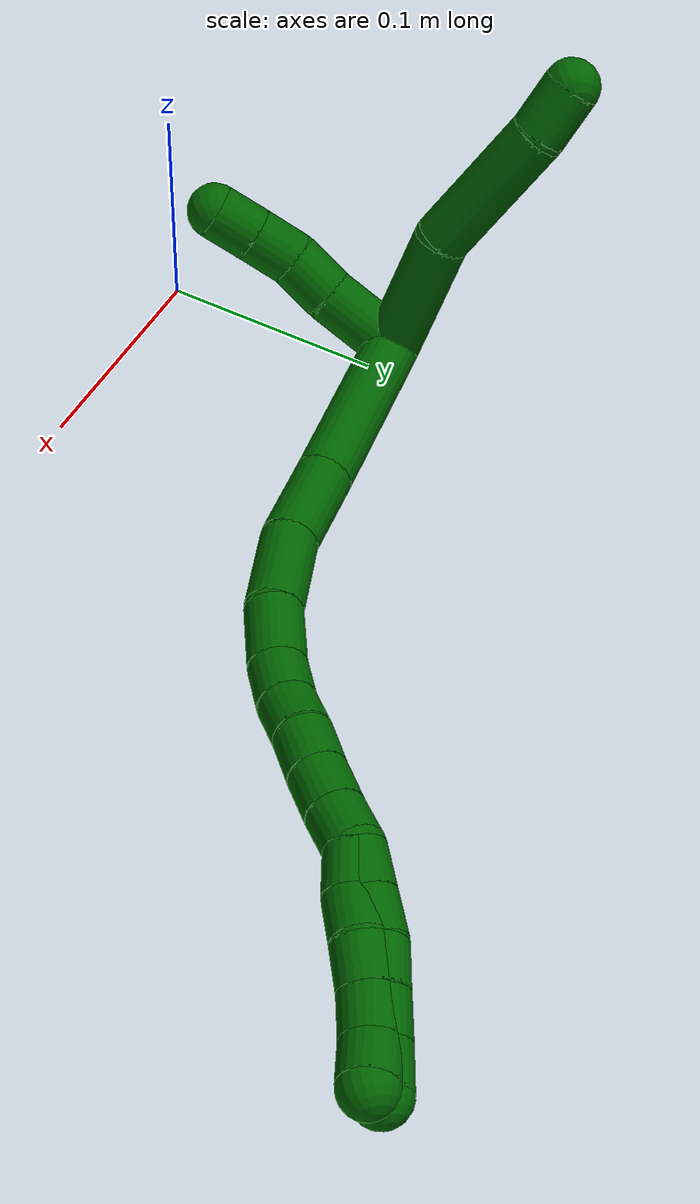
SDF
<sdf version="1.7">
 <world name="default">
  <model name="6">
   <static>0</static>
   <link name="6">
    <collision name="collision-cylinder-e_1_2_8">
     <pose>0.027853 -0.00902 -0.006403 2.18809 1.19276 1.84078</pose>
     <geometry><cylinder><radius>0.0125</radius><length>0.059938</length></cylinder></geometry>
     <surface>
      <friction><ode><mu>1.16</mu><mu2>1.16</mu2><slip1>0</slip1><slip2>0</slip2></ode></friction>
      <contact><ode><kp>1e+06</kp><kd>1</kd><max_vel>0</max_vel><min_depth>0.001</min_depth></ode></contact>
     </surface>
    </collision>
    <visual name="visual-cylinder-e_1_2_8">
     <pose>0.027853 -0.00902 -0.006403 2.18809 1.19276 1.84078</pose>
     <geometry><cylinder><radius>0.0125</radius><length>0.059938</length></cylinder></geometry>
     <material><ambient>0 0.392157 0.003922 1</ambient></material>
    </visual>
    <collision name="collision-cylinder-e_2_8_9">
     <pose>0.082305 -0.036336 -0.01705 1.79874 0.955988 1.15556</pose>
     <geometry><cylinder><radius>0.0125</radius><length>0.065125</length></cylinder></geometry>
     <surface>
      <friction><ode><mu>1.16</mu><mu2>1.16</mu2><slip1>0</slip1><slip2>0</slip2></ode></friction>
      <contact><ode><kp>1e+06</kp><kd>1</kd><max_vel>0</max_vel><min_depth>0.001</min_depth></ode></contact>
     </surface>
    </collision>
    <visual name="visual-cylinder-e_2_8_9">
     <pose>0.082305 -0.036336 -0.01705 1.79874 0.955988 1.15556</pose>
     <geometry><cylinder><radius>0.0125</radius><length>0.065125</length></cylinder></geometry>
     <material><ambient>0 0.392157 0.003922 1</ambient></material>
    </visual>
    <collision name="collision-cylinder-e_3_9_6">
     <pose>0.118403 -0.061544 -0.025476 2.11487 0.866005 1.37355</pose>
     <geometry><cylinder><radius>0.0125</radius><length>0.024937</length></cylinder></geometry>
     <surface>
      <friction><ode><mu>1.16</mu><mu2>1.16</mu2><slip1>0</slip1><slip2>0</slip2></ode></friction>
      <contact><ode><kp>1e+06</kp><kd>1</kd><max_vel>0</max_vel><min_depth>0.001</min_depth></ode></contact>
     </surface>
    </collision>
    <visual name="visual-cylinder-e_3_9_6">
     <pose>0.118403 -0.061544 -0.025476 2.11487 0.866005 1.37355</pose>
     <geometry><cylinder><radius>0.0125</radius><length>0.024937</length></cylinder></geometry>
     <material><ambient>0 0.392157 0.003922 1</ambient></material>
    </visual>
    <collision name="collision-cylinder-e_1_2_10">
     <pose>0.006172 0.012983 -0.011157 -2.28072 0.346026 -0.727375</pose>
     <geometry><cylinder><radius>0.0125</radius><length>0.036393</length></cylinder></geometry>
     <surface>
      <friction><ode><mu>1.16</mu><mu2>1.16</mu2><slip1>0</slip1><slip2>0</slip2></ode></friction>
      <contact><ode><kp>1e+06</kp><kd>1</kd><max_vel>0</max_vel><min_depth>0.001</min_depth></ode></contact>
     </surface>
    </collision>
    <visual name="visual-cylinder-e_1_2_10">
     <pose>0.006172 0.012983 -0.011157 -2.28072 0.346026 -0.727375</pose>
     <geometry><cylinder><radius>0.0125</radius><length>0.036393</length></cylinder></geometry>
     <material><ambient>0 0.392157 0.003922 1</ambient></material>
    </visual>
    <collision name="collision-cylinder-e_2_10_11">
     <pose>0.016943 0.033037 -0.029637 -2.37359 0.424361 -0.979623</pose>
     <geometry><cylinder><radius>0.0125</radius><length>0.022341</length></cylinder></geometry>
     <surface>
      <friction><ode><mu>1.16</mu><mu2>1.16</mu2><slip1>0</slip1><slip2>0</slip2></ode></friction>
      <contact><ode><kp>1e+06</kp><kd>1</kd><max_vel>0</max_vel><min_depth>0.001</min_depth></ode></contact>
     </surface>
    </collision>
    <visual name="visual-cylinder-e_2_10_11">
     <pose>0.016943 0.033037 -0.029637 -2.37359 0.424361 -0.979623</pose>
     <geometry><cylinder><radius>0.0125</radius><length>0.022341</length></cylinder></geometry>
     <material><ambient>0 0.392157 0.003922 1</ambient></material>
    </visual>
    <collision name="collision-cylinder-e_3_11_12">
     <pose>0.025695 0.048592 -0.041691 -2.07963 0.403982 -0.671075</pose>
     <geometry><cylinder><radius>0.0125</radius><length>0.021129</length></cylinder></geometry>
     <surface>
      <friction><ode><mu>1.16</mu><mu2>1.16</mu2><slip1>0</slip1><slip2>0</slip2></ode></friction>
      <contact><ode><kp>1e+06</kp><kd>1</kd><max_vel>0</max_vel><min_depth>0.001</min_depth></ode></contact>
     </surface>
    </collision>
    <visual name="visual-cylinder-e_3_11_12">
     <pose>0.025695 0.048592 -0.041691 -2.07963 0.403982 -0.671075</pose>
     <geometry><cylinder><radius>0.0125</radius><length>0.021129</length></cylinder></geometry>
     <material><ambient>0 0.392157 0.003922 1</ambient></material>
    </visual>
    <collision name="collision-cylinder-e_4_12_5">
     <pose>0.033661 0.065219 -0.050952 -2.07827 0.388508 -0.645599</pose>
     <geometry><cylinder><radius>0.0125</radius><length>0.020136</length></cylinder></geometry>
     <surface>
      <friction><ode><mu>1.16</mu><mu2>1.16</mu2><slip1>0</slip1><slip2>0</slip2></ode></friction>
      <contact><ode><kp>1e+06</kp><kd>1</kd><max_vel>0</max_vel><min_depth>0.001</min_depth></ode></contact>
     </surface>
    </collision>
    <visual name="visual-cylinder-e_4_12_5">
     <pose>0.033661 0.065219 -0.050952 -2.07827 0.388508 -0.645599</pose>
     <geometry><cylinder><radius>0.0125</radius><length>0.020136</length></cylinder></geometry>
     <material><ambient>0 0.392157 0.003922 1</ambient></material>
    </visual>
    <collision name="collision-cylinder-e_1_2_13">
     <pose>0.003749 0.023627 0.035882 -0.582293 0.087034 -0.026096</pose>
     <geometry><cylinder><radius>0.0125</radius><length>0.086251</length></cylinder></geometry>
     <surface>
      <friction><ode><mu>1.16</mu><mu2>1.16</mu2><slip1>0</slip1><slip2>0</slip2></ode></friction>
      <contact><ode><kp>1e+06</kp><kd>1</kd><max_vel>0</max_vel><min_depth>0.001</min_depth></ode></contact>
     </surface>
    </collision>
    <visual name="visual-cylinder-e_1_2_13">
     <pose>0.003749 0.023627 0.035882 -0.582293 0.087034 -0.026096</pose>
     <geometry><cylinder><radius>0.0125</radius><length>0.086251</length></cylinder></geometry>
     <material><ambient>0 0.392157 0.003922 1</ambient></material>
    </visual>
    <collision name="collision-cylinder-e_2_13_14">
     <pose>0.009749 0.058428 0.08843 -0.590646 0.111775 -0.034036</pose>
     <geometry><cylinder><radius>0.0125</radius><length>0.040382</length></cylinder></geometry>
     <surface>
      <friction><ode><mu>1.16</mu><mu2>1.16</mu2><slip1>0</slip1><slip2>0</slip2></ode></friction>
      <contact><ode><kp>1e+06</kp><kd>1</kd><max_vel>0</max_vel><min_depth>0.001</min_depth></ode></contact>
     </surface>
    </collision>
    <visual name="visual-cylinder-e_2_13_14">
     <pose>0.009749 0.058428 0.08843 -0.590646 0.111775 -0.034036</pose>
     <geometry><cylinder><radius>0.0125</radius><length>0.040382</length></cylinder></geometry>
     <material><ambient>0 0.392157 0.003922 1</ambient></material>
    </visual>
    <collision name="collision-cylinder-e_3_14_15">
     <pose>0.015786 0.076985 0.123934 -0.373518 0.184911 -0.035037</pose>
     <geometry><cylinder><radius>0.0125</radius><length>0.041168</length></cylinder></geometry>
     <surface>
      <friction><ode><mu>1.16</mu><mu2>1.16</mu2><slip1>0</slip1><slip2>0</slip2></ode></friction>
      <contact><ode><kp>1e+06</kp><kd>1</kd><max_vel>0</max_vel><min_depth>0.001</min_depth></ode></contact>
     </surface>
    </collision>
    <visual name="visual-cylinder-e_3_14_15">
     <pose>0.015786 0.076985 0.123934 -0.373518 0.184911 -0.035037</pose>
     <geometry><cylinder><radius>0.0125</radius><length>0.041168</length></cylinder></geometry>
     <material><ambient>0 0.392157 0.003922 1</ambient></material>
    </visual>
    <collision name="collision-cylinder-e_4_15_16">
     <pose>0.020949 0.086532 0.15704 -0.15053 0.095245 -0.007188</pose>
     <geometry><cylinder><radius>0.0125</radius><length>0.028994</length></cylinder></geometry>
     <surface>
      <friction><ode><mu>1.16</mu><mu2>1.16</mu2><slip1>0</slip1><slip2>0</slip2></ode></friction>
      <contact><ode><kp>1e+06</kp><kd>1</kd><max_vel>0</max_vel><min_depth>0.001</min_depth></ode></contact>
     </surface>
    </collision>
    <visual name="visual-cylinder-e_4_15_16">
     <pose>0.020949 0.086532 0.15704 -0.15053 0.095245 -0.007188</pose>
     <geometry><cylinder><radius>0.0125</radius><length>0.028994</length></cylinder></geometry>
     <material><ambient>0 0.392157 0.003922 1</ambient></material>
    </visual>
    <collision name="collision-cylinder-e_5_16_17">
     <pose>0.024623 0.088979 0.181403 -0.02807 0.223472 -0.00315</pose>
     <geometry><cylinder><radius>0.0125</radius><length>0.020714</length></cylinder></geometry>
     <surface>
      <friction><ode><mu>1.16</mu><mu2>1.16</mu2><slip1>0</slip1><slip2>0</slip2></ode></friction>
      <contact><ode><kp>1e+06</kp><kd>1</kd><max_vel>0</max_vel><min_depth>0.001</min_depth></ode></contact>
     </surface>
    </collision>
    <visual name="visual-cylinder-e_5_16_17">
     <pose>0.024623 0.088979 0.181403 -0.02807 0.223472 -0.00315</pose>
     <geometry><cylinder><radius>0.0125</radius><length>0.020714</length></cylinder></geometry>
     <material><ambient>0 0.392157 0.003922 1</ambient></material>
    </visual>
    <collision name="collision-cylinder-e_6_17_18">
     <pose>0.030315 0.088339 0.200895 0.098006 0.345365 0.017107</pose>
     <geometry><cylinder><radius>0.0125</radius><length>0.020067</length></cylinder></geometry>
     <surface>
      <friction><ode><mu>1.16</mu><mu2>1.16</mu2><slip1>0</slip1><slip2>0</slip2></ode></friction>
      <contact><ode><kp>1e+06</kp><kd>1</kd><max_vel>0</max_vel><min_depth>0.001</min_depth></ode></contact>
     </surface>
    </collision>
    <visual name="visual-cylinder-e_6_17_18">
     <pose>0.030315 0.088339 0.200895 0.098006 0.345365 0.017107</pose>
     <geometry><cylinder><radius>0.0125</radius><length>0.020067</length></cylinder></geometry>
     <material><ambient>0 0.392157 0.003922 1</ambient></material>
    </visual>
    <collision name="collision-cylinder-e_7_18_19">
     <pose>0.036246 0.086795 0.220657 0.059778 0.23931 0.007189</pose>
     <geometry><cylinder><radius>0.0125</radius><length>0.021378</length></cylinder></geometry>
     <surface>
      <friction><ode><mu>1.16</mu><mu2>1.16</mu2><slip1>0</slip1><slip2>0</slip2></ode></friction>
      <contact><ode><kp>1e+06</kp><kd>1</kd><max_vel>0</max_vel><min_depth>0.001</min_depth></ode></contact>
     </surface>
    </collision>
    <visual name="visual-cylinder-e_7_18_19">
     <pose>0.036246 0.086795 0.220657 0.059778 0.23931 0.007189</pose>
     <geometry><cylinder><radius>0.0125</radius><length>0.021378</length></cylinder></geometry>
     <material><ambient>0 0.392157 0.003922 1</ambient></material>
    </visual>
    <collision name="collision-cylinder-e_8_19_20">
     <pose>0.041215 0.085034 0.241075 0.112921 0.236237 0.013414</pose>
     <geometry><cylinder><radius>0.0125</radius><length>0.020813</length></cylinder></geometry>
     <surface>
      <friction><ode><mu>1.16</mu><mu2>1.16</mu2><slip1>0</slip1><slip2>0</slip2></ode></friction>
      <contact><ode><kp>1e+06</kp><kd>1</kd><max_vel>0</max_vel><min_depth>0.001</min_depth></ode></contact>
     </surface>
    </collision>
    <visual name="visual-cylinder-e_8_19_20">
     <pose>0.041215 0.085034 0.241075 0.112921 0.236237 0.013414</pose>
     <geometry><cylinder><radius>0.0125</radius><length>0.020813</length></cylinder></geometry>
     <material><ambient>0 0.392157 0.003922 1</ambient></material>
    </visual>
    <collision name="collision-cylinder-e_9_20_1">
     <pose>0.046455 0.082395 0.260732 0.154877 0.280873 0.021937</pose>
     <geometry><cylinder><radius>0.0125</radius><length>0.020233</length></cylinder></geometry>
     <surface>
      <friction><ode><mu>1.16</mu><mu2>1.16</mu2><slip1>0</slip1><slip2>0</slip2></ode></friction>
      <contact><ode><kp>1e+06</kp><kd>1</kd><max_vel>0</max_vel><min_depth>0.001</min_depth></ode></contact>
     </surface>
    </collision>
    <visual name="visual-cylinder-e_9_20_1">
     <pose>0.046455 0.082395 0.260732 0.154877 0.280873 0.021937</pose>
     <geometry><cylinder><radius>0.0125</radius><length>0.020233</length></cylinder></geometry>
     <material><ambient>0 0.392157 0.003922 1</ambient></material>
    </visual>
    <collision name="collision-cylinder-e_1_1_21">
     <pose>0.049005 0.080905 0.280332 -0.000937 -0.025415 1.2e-05</pose>
     <geometry><cylinder><radius>0.0125</radius><length>0.02</length></cylinder></geometry>
     <surface>
      <friction><ode><mu>1.16</mu><mu2>1.16</mu2><slip1>0</slip1><slip2>0</slip2></ode></friction>
      <contact><ode><kp>1e+06</kp><kd>1</kd><max_vel>0</max_vel><min_depth>0.001</min_depth></ode></contact>
     </surface>
    </collision>
    <visual name="visual-cylinder-e_1_1_21">
     <pose>0.049005 0.080905 0.280332 -0.000937 -0.025415 1.2e-05</pose>
     <geometry><cylinder><radius>0.0125</radius><length>0.02</length></cylinder></geometry>
     <material><ambient>0 0.392157 0.003922 1</ambient></material>
    </visual>
    <collision name="collision-cylinder-e_2_21_22">
     <pose>0.048813 0.080932 0.300329 -0.001749 0.00619 -5e-06</pose>
     <geometry><cylinder><radius>0.0125</radius><length>0.02</length></cylinder></geometry>
     <surface>
      <friction><ode><mu>1.16</mu><mu2>1.16</mu2><slip1>0</slip1><slip2>0</slip2></ode></friction>
      <contact><ode><kp>1e+06</kp><kd>1</kd><max_vel>0</max_vel><min_depth>0.001</min_depth></ode></contact>
     </surface>
    </collision>
    <visual name="visual-cylinder-e_2_21_22">
     <pose>0.048813 0.080932 0.300329 -0.001749 0.00619 -5e-06</pose>
     <geometry><cylinder><radius>0.0125</radius><length>0.02</length></cylinder></geometry>
     <material><ambient>0 0.392157 0.003922 1</ambient></material>
    </visual>
    <collision name="collision-cylinder-e_3_22_23">
     <pose>0.049091 0.082905 0.320133 -0.196851 0.021636 -0.002137</pose>
     <geometry><cylinder><radius>0.0125</radius><length>0.02</length></cylinder></geometry>
     <surface>
      <friction><ode><mu>1.16</mu><mu2>1.16</mu2><slip1>0</slip1><slip2>0</slip2></ode></friction>
      <contact><ode><kp>1e+06</kp><kd>1</kd><max_vel>0</max_vel><min_depth>0.001</min_depth></ode></contact>
     </surface>
    </collision>
    <visual name="visual-cylinder-e_3_22_23">
     <pose>0.049091 0.082905 0.320133 -0.196851 0.021636 -0.002137</pose>
     <geometry><cylinder><radius>0.0125</radius><length>0.02</length></cylinder></geometry>
     <material><ambient>0 0.392157 0.003922 1</ambient></material>
    </visual>
    <collision name="collision-cylinder-e_4_23_24">
     <pose>0.048701 0.086579 0.33977 -0.173106 -0.060696 0.005268</pose>
     <geometry><cylinder><radius>0.0125</radius><length>0.02</length></cylinder></geometry>
     <surface>
      <friction><ode><mu>1.16</mu><mu2>1.16</mu2><slip1>0</slip1><slip2>0</slip2></ode></friction>
      <contact><ode><kp>1e+06</kp><kd>1</kd><max_vel>0</max_vel><min_depth>0.001</min_depth></ode></contact>
     </surface>
    </collision>
    <visual name="visual-cylinder-e_4_23_24">
     <pose>0.048701 0.086579 0.33977 -0.173106 -0.060696 0.005268</pose>
     <geometry><cylinder><radius>0.0125</radius><length>0.02</length></cylinder></geometry>
     <material><ambient>0 0.392157 0.003922 1</ambient></material>
    </visual>
    <collision name="collision-cylinder-e_5_24_4">
     <pose>0.0483 0.090269 0.359404 -0.198389 0.020543 -0.002045</pose>
     <geometry><cylinder><radius>0.0125</radius><length>0.02</length></cylinder></geometry>
     <surface>
      <friction><ode><mu>1.16</mu><mu2>1.16</mu2><slip1>0</slip1><slip2>0</slip2></ode></friction>
      <contact><ode><kp>1e+06</kp><kd>1</kd><max_vel>0</max_vel><min_depth>0.001</min_depth></ode></contact>
     </surface>
    </collision>
    <visual name="visual-cylinder-e_5_24_4">
     <pose>0.0483 0.090269 0.359404 -0.198389 0.020543 -0.002045</pose>
     <geometry><cylinder><radius>0.0125</radius><length>0.02</length></cylinder></geometry>
     <material><ambient>0 0.392157 0.003922 1</ambient></material>
    </visual>
    <collision name="collision-cylinder-e_1_1_25">
     <pose>0.048752 0.08318 0.280058 -0.230779 -0.050723 0.00588</pose>
     <geometry><cylinder><radius>0.0125</radius><length>0.02</length></cylinder></geometry>
     <surface>
      <friction><ode><mu>1.16</mu><mu2>1.16</mu2><slip1>0</slip1><slip2>0</slip2></ode></friction>
      <contact><ode><kp>1e+06</kp><kd>1</kd><max_vel>0</max_vel><min_depth>0.001</min_depth></ode></contact>
     </surface>
    </collision>
    <visual name="visual-cylinder-e_1_1_25">
     <pose>0.048752 0.08318 0.280058 -0.230779 -0.050723 0.00588</pose>
     <geometry><cylinder><radius>0.0125</radius><length>0.02</length></cylinder></geometry>
     <material><ambient>0 0.392157 0.003922 1</ambient></material>
    </visual>
    <collision name="collision-cylinder-e_2_25_26">
     <pose>0.049697 0.086269 0.299642 -0.081382 0.145705 -0.005943</pose>
     <geometry><cylinder><radius>0.0125</radius><length>0.02</length></cylinder></geometry>
     <surface>
      <friction><ode><mu>1.16</mu><mu2>1.16</mu2><slip1>0</slip1><slip2>0</slip2></ode></friction>
      <contact><ode><kp>1e+06</kp><kd>1</kd><max_vel>0</max_vel><min_depth>0.001</min_depth></ode></contact>
     </surface>
    </collision>
    <visual name="visual-cylinder-e_2_25_26">
     <pose>0.049697 0.086269 0.299642 -0.081382 0.145705 -0.005943</pose>
     <geometry><cylinder><radius>0.0125</radius><length>0.02</length></cylinder></geometry>
     <material><ambient>0 0.392157 0.003922 1</ambient></material>
    </visual>
    <collision name="collision-cylinder-e_3_26_27">
     <pose>0.0509 0.087775 0.319475 -0.070243 -0.024869 0.000874</pose>
     <geometry><cylinder><radius>0.0125</radius><length>0.02</length></cylinder></geometry>
     <surface>
      <friction><ode><mu>1.16</mu><mu2>1.16</mu2><slip1>0</slip1><slip2>0</slip2></ode></friction>
      <contact><ode><kp>1e+06</kp><kd>1</kd><max_vel>0</max_vel><min_depth>0.001</min_depth></ode></contact>
     </surface>
    </collision>
    <visual name="visual-cylinder-e_3_26_27">
     <pose>0.0509 0.087775 0.319475 -0.070243 -0.024869 0.000874</pose>
     <geometry><cylinder><radius>0.0125</radius><length>0.02</length></cylinder></geometry>
     <material><ambient>0 0.392157 0.003922 1</ambient></material>
    </visual>
    <collision name="collision-cylinder-e_4_27_28">
     <pose>0.050508 0.090154 0.339305 -0.168616 -0.014344 0.001212</pose>
     <geometry><cylinder><radius>0.0125</radius><length>0.02</length></cylinder></geometry>
     <surface>
      <friction><ode><mu>1.16</mu><mu2>1.16</mu2><slip1>0</slip1><slip2>0</slip2></ode></friction>
      <contact><ode><kp>1e+06</kp><kd>1</kd><max_vel>0</max_vel><min_depth>0.001</min_depth></ode></contact>
     </surface>
    </collision>
    <visual name="visual-cylinder-e_4_27_28">
     <pose>0.050508 0.090154 0.339305 -0.168616 -0.014344 0.001212</pose>
     <geometry><cylinder><radius>0.0125</radius><length>0.02</length></cylinder></geometry>
     <material><ambient>0 0.392157 0.003922 1</ambient></material>
    </visual>
    <collision name="collision-cylinder-e_5_28_3">
     <pose>0.052704 0.094637 0.358471 -0.292609 0.236077 -0.034946</pose>
     <geometry><cylinder><radius>0.0125</radius><length>0.02</length></cylinder></geometry>
     <surface>
      <friction><ode><mu>1.16</mu><mu2>1.16</mu2><slip1>0</slip1><slip2>0</slip2></ode></friction>
      <contact><ode><kp>1e+06</kp><kd>1</kd><max_vel>0</max_vel><min_depth>0.001</min_depth></ode></contact>
     </surface>
    </collision>
    <visual name="visual-cylinder-e_5_28_3">
     <pose>0.052704 0.094637 0.358471 -0.292609 0.236077 -0.034946</pose>
     <geometry><cylinder><radius>0.0125</radius><length>0.02</length></cylinder></geometry>
     <material><ambient>0 0.392157 0.003922 1</ambient></material>
    </visual>
    <collision name="collision-sphere-3">
     <pose>0.055043 0.097441 0.36778 0 -0 0</pose>
     <geometry><sphere><radius>0.0125</radius></sphere></geometry>
     <surface>
      <friction><ode><mu>1.16</mu><mu2>1.16</mu2><slip1>0</slip1><slip2>0</slip2></ode></friction>
      <contact><ode><kp>1e+06</kp><kd>1</kd><max_vel>0</max_vel><min_depth>0.001</min_depth></ode></contact>
     </surface>
    </collision>
    <visual name="visual-sphere-3">
     <pose>0.055043 0.097441 0.36778 0 -0 0</pose>
     <geometry><sphere><radius>0.0125</radius></sphere></geometry>
     <material><ambient>0 0.392157 0.003922 1</ambient></material>
    </visual>
    <collision name="collision-sphere-28">
     <pose>0.050365 0.091832 0.349162 0 -0 0</pose>
     <geometry><sphere><radius>0.0125</radius></sphere></geometry>
     <surface>
      <friction><ode><mu>1.16</mu><mu2>1.16</mu2><slip1>0</slip1><slip2>0</slip2></ode></friction>
      <contact><ode><kp>1e+06</kp><kd>1</kd><max_vel>0</max_vel><min_depth>0.001</min_depth></ode></contact>
     </surface>
    </collision>
    <visual name="visual-sphere-28">
     <pose>0.050365 0.091832 0.349162 0 -0 0</pose>
     <geometry><sphere><radius>0.0125</radius></sphere></geometry>
     <material><ambient>0 0.392157 0.003922 1</ambient></material>
    </visual>
    <collision name="collision-sphere-27">
     <pose>0.050652 0.088476 0.329447 0 -0 0</pose>
     <geometry><sphere><radius>0.0125</radius></sphere></geometry>
     <surface>
      <friction><ode><mu>1.16</mu><mu2>1.16</mu2><slip1>0</slip1><slip2>0</slip2></ode></friction>
      <contact><ode><kp>1e+06</kp><kd>1</kd><max_vel>0</max_vel><min_depth>0.001</min_depth></ode></contact>
     </surface>
    </collision>
    <visual name="visual-sphere-27">
     <pose>0.050652 0.088476 0.329447 0 -0 0</pose>
     <geometry><sphere><radius>0.0125</radius></sphere></geometry>
     <material><ambient>0 0.392157 0.003922 1</ambient></material>
    </visual>
    <collision name="collision-sphere-26">
     <pose>0.051149 0.087073 0.309503 0 -0 0</pose>
     <geometry><sphere><radius>0.0125</radius></sphere></geometry>
     <surface>
      <friction><ode><mu>1.16</mu><mu2>1.16</mu2><slip1>0</slip1><slip2>0</slip2></ode></friction>
      <contact><ode><kp>1e+06</kp><kd>1</kd><max_vel>0</max_vel><min_depth>0.001</min_depth></ode></contact>
     </surface>
    </collision>
    <visual name="visual-sphere-26">
     <pose>0.051149 0.087073 0.309503 0 -0 0</pose>
     <geometry><sphere><radius>0.0125</radius></sphere></geometry>
     <material><ambient>0 0.392157 0.003922 1</ambient></material>
    </visual>
    <collision name="collision-sphere-25">
     <pose>0.048245 0.085464 0.28978 0 -0 0</pose>
     <geometry><sphere><radius>0.0125</radius></sphere></geometry>
     <surface>
      <friction><ode><mu>1.16</mu><mu2>1.16</mu2><slip1>0</slip1><slip2>0</slip2></ode></friction>
      <contact><ode><kp>1e+06</kp><kd>1</kd><max_vel>0</max_vel><min_depth>0.001</min_depth></ode></contact>
     </surface>
    </collision>
    <visual name="visual-sphere-25">
     <pose>0.048245 0.085464 0.28978 0 -0 0</pose>
     <geometry><sphere><radius>0.0125</radius></sphere></geometry>
     <material><ambient>0 0.392157 0.003922 1</ambient></material>
    </visual>
    <collision name="collision-sphere-4">
     <pose>0.048505 0.092239 0.369206 0 -0 0</pose>
     <geometry><sphere><radius>0.0125</radius></sphere></geometry>
     <surface>
      <friction><ode><mu>1.16</mu><mu2>1.16</mu2><slip1>0</slip1><slip2>0</slip2></ode></friction>
      <contact><ode><kp>1e+06</kp><kd>1</kd><max_vel>0</max_vel><min_depth>0.001</min_depth></ode></contact>
     </surface>
    </collision>
    <visual name="visual-sphere-4">
     <pose>0.048505 0.092239 0.369206 0 -0 0</pose>
     <geometry><sphere><radius>0.0125</radius></sphere></geometry>
     <material><ambient>0 0.392157 0.003922 1</ambient></material>
    </visual>
    <collision name="collision-sphere-24">
     <pose>0.048094 0.088298 0.349603 0 -0 0</pose>
     <geometry><sphere><radius>0.0125</radius></sphere></geometry>
     <surface>
      <friction><ode><mu>1.16</mu><mu2>1.16</mu2><slip1>0</slip1><slip2>0</slip2></ode></friction>
      <contact><ode><kp>1e+06</kp><kd>1</kd><max_vel>0</max_vel><min_depth>0.001</min_depth></ode></contact>
     </surface>
    </collision>
    <visual name="visual-sphere-24">
     <pose>0.048094 0.088298 0.349603 0 -0 0</pose>
     <geometry><sphere><radius>0.0125</radius></sphere></geometry>
     <material><ambient>0 0.392157 0.003922 1</ambient></material>
    </visual>
    <collision name="collision-sphere-23">
     <pose>0.049307 0.08486 0.329938 0 -0 0</pose>
     <geometry><sphere><radius>0.0125</radius></sphere></geometry>
     <surface>
      <friction><ode><mu>1.16</mu><mu2>1.16</mu2><slip1>0</slip1><slip2>0</slip2></ode></friction>
      <contact><ode><kp>1e+06</kp><kd>1</kd><max_vel>0</max_vel><min_depth>0.001</min_depth></ode></contact>
     </surface>
    </collision>
    <visual name="visual-sphere-23">
     <pose>0.049307 0.08486 0.329938 0 -0 0</pose>
     <geometry><sphere><radius>0.0125</radius></sphere></geometry>
     <material><ambient>0 0.392157 0.003922 1</ambient></material>
    </visual>
    <collision name="collision-sphere-22">
     <pose>0.048875 0.080949 0.310329 0 -0 0</pose>
     <geometry><sphere><radius>0.0125</radius></sphere></geometry>
     <surface>
      <friction><ode><mu>1.16</mu><mu2>1.16</mu2><slip1>0</slip1><slip2>0</slip2></ode></friction>
      <contact><ode><kp>1e+06</kp><kd>1</kd><max_vel>0</max_vel><min_depth>0.001</min_depth></ode></contact>
     </surface>
    </collision>
    <visual name="visual-sphere-22">
     <pose>0.048875 0.080949 0.310329 0 -0 0</pose>
     <geometry><sphere><radius>0.0125</radius></sphere></geometry>
     <material><ambient>0 0.392157 0.003922 1</ambient></material>
    </visual>
    <collision name="collision-sphere-21">
     <pose>0.048751 0.080914 0.290329 0 -0 0</pose>
     <geometry><sphere><radius>0.0125</radius></sphere></geometry>
     <surface>
      <friction><ode><mu>1.16</mu><mu2>1.16</mu2><slip1>0</slip1><slip2>0</slip2></ode></friction>
      <contact><ode><kp>1e+06</kp><kd>1</kd><max_vel>0</max_vel><min_depth>0.001</min_depth></ode></contact>
     </surface>
    </collision>
    <visual name="visual-sphere-21">
     <pose>0.048751 0.080914 0.290329 0 -0 0</pose>
     <geometry><sphere><radius>0.0125</radius></sphere></geometry>
     <material><ambient>0 0.392157 0.003922 1</ambient></material>
    </visual>
    <collision name="collision-sphere-1">
     <pose>0.049259 0.080895 0.270336 0 -0 0</pose>
     <geometry><sphere><radius>0.0125</radius></sphere></geometry>
     <surface>
      <friction><ode><mu>1.16</mu><mu2>1.16</mu2><slip1>0</slip1><slip2>0</slip2></ode></friction>
      <contact><ode><kp>1e+06</kp><kd>1</kd><max_vel>0</max_vel><min_depth>0.001</min_depth></ode></contact>
     </surface>
    </collision>
    <visual name="visual-sphere-1">
     <pose>0.049259 0.080895 0.270336 0 -0 0</pose>
     <geometry><sphere><radius>0.0125</radius></sphere></geometry>
     <material><ambient>0 0.392157 0.003922 1</ambient></material>
    </visual>
    <collision name="collision-sphere-11">
     <pose>0.021542 0.040109 -0.036959 0 -0 0</pose>
     <geometry><sphere><radius>0.0125</radius></sphere></geometry>
     <surface>
      <friction><ode><mu>1.16</mu><mu2>1.16</mu2><slip1>0</slip1><slip2>0</slip2></ode></friction>
      <contact><ode><kp>1e+06</kp><kd>1</kd><max_vel>0</max_vel><min_depth>0.001</min_depth></ode></contact>
     </surface>
    </collision>
    <visual name="visual-sphere-11">
     <pose>0.021542 0.040109 -0.036959 0 -0 0</pose>
     <geometry><sphere><radius>0.0125</radius></sphere></geometry>
     <material><ambient>0 0.392157 0.003922 1</ambient></material>
    </visual>
    <collision name="collision-sphere-10">
     <pose>0.012343 0.025965 -0.022314 0 -0 0</pose>
     <geometry><sphere><radius>0.0125</radius></sphere></geometry>
     <surface>
      <friction><ode><mu>1.16</mu><mu2>1.16</mu2><slip1>0</slip1><slip2>0</slip2></ode></friction>
      <contact><ode><kp>1e+06</kp><kd>1</kd><max_vel>0</max_vel><min_depth>0.001</min_depth></ode></contact>
     </surface>
    </collision>
    <visual name="visual-sphere-10">
     <pose>0.012343 0.025965 -0.022314 0 -0 0</pose>
     <geometry><sphere><radius>0.0125</radius></sphere></geometry>
     <material><ambient>0 0.392157 0.003922 1</ambient></material>
    </visual>
    <collision name="collision-sphere-6">
     <pose>0.127901 -0.068456 -0.029657 0 -0 0</pose>
     <geometry><sphere><radius>0.0125</radius></sphere></geometry>
     <surface>
      <friction><ode><mu>1.16</mu><mu2>1.16</mu2><slip1>0</slip1><slip2>0</slip2></ode></friction>
      <contact><ode><kp>1e+06</kp><kd>1</kd><max_vel>0</max_vel><min_depth>0.001</min_depth></ode></contact>
     </surface>
    </collision>
    <visual name="visual-sphere-6">
     <pose>0.127901 -0.068456 -0.029657 0 -0 0</pose>
     <geometry><sphere><radius>0.0125</radius></sphere></geometry>
     <material><ambient>0 0.392157 0.003922 1</ambient></material>
    </visual>
    <collision name="collision-sphere-9">
     <pose>0.108905 -0.054633 -0.021294 0 -0 0</pose>
     <geometry><sphere><radius>0.0125</radius></sphere></geometry>
     <surface>
      <friction><ode><mu>1.16</mu><mu2>1.16</mu2><slip1>0</slip1><slip2>0</slip2></ode></friction>
      <contact><ode><kp>1e+06</kp><kd>1</kd><max_vel>0</max_vel><min_depth>0.001</min_depth></ode></contact>
     </surface>
    </collision>
    <visual name="visual-sphere-9">
     <pose>0.108905 -0.054633 -0.021294 0 -0 0</pose>
     <geometry><sphere><radius>0.0125</radius></sphere></geometry>
     <material><ambient>0 0.392157 0.003922 1</ambient></material>
    </visual>
    <collision name="collision-sphere-2">
     <geometry><sphere><radius>0.0125</radius></sphere></geometry>
     <surface>
      <friction><ode><mu>1.16</mu><mu2>1.16</mu2><slip1>0</slip1><slip2>0</slip2></ode></friction>
      <contact><ode><kp>1e+06</kp><kd>1</kd><max_vel>0</max_vel><min_depth>0.001</min_depth></ode></contact>
     </surface>
    </collision>
    <visual name="visual-sphere-2">
     <geometry><sphere><radius>0.0125</radius></sphere></geometry>
     <material><ambient>0 0.392157 0.003922 1</ambient></material>
    </visual>
    <collision name="collision-sphere-19">
     <pose>0.03878 0.086174 0.231023 0 -0 0</pose>
     <geometry><sphere><radius>0.0125</radius></sphere></geometry>
     <surface>
      <friction><ode><mu>1.16</mu><mu2>1.16</mu2><slip1>0</slip1><slip2>0</slip2></ode></friction>
      <contact><ode><kp>1e+06</kp><kd>1</kd><max_vel>0</max_vel><min_depth>0.001</min_depth></ode></contact>
     </surface>
    </collision>
    <visual name="visual-sphere-19">
     <pose>0.03878 0.086174 0.231023 0 -0 0</pose>
     <geometry><sphere><radius>0.0125</radius></sphere></geometry>
     <material><ambient>0 0.392157 0.003922 1</ambient></material>
    </visual>
    <collision name="collision-sphere-8">
     <pose>0.055706 -0.01804 -0.012806 0 -0 0</pose>
     <geometry><sphere><radius>0.0125</radius></sphere></geometry>
     <surface>
      <friction><ode><mu>1.16</mu><mu2>1.16</mu2><slip1>0</slip1><slip2>0</slip2></ode></friction>
      <contact><ode><kp>1e+06</kp><kd>1</kd><max_vel>0</max_vel><min_depth>0.001</min_depth></ode></contact>
     </surface>
    </collision>
    <visual name="visual-sphere-8">
     <pose>0.055706 -0.01804 -0.012806 0 -0 0</pose>
     <geometry><sphere><radius>0.0125</radius></sphere></geometry>
     <material><ambient>0 0.392157 0.003922 1</ambient></material>
    </visual>
    <collision name="collision-sphere-12">
     <pose>0.029847 0.057076 -0.046424 0 -0 0</pose>
     <geometry><sphere><radius>0.0125</radius></sphere></geometry>
     <surface>
      <friction><ode><mu>1.16</mu><mu2>1.16</mu2><slip1>0</slip1><slip2>0</slip2></ode></friction>
      <contact><ode><kp>1e+06</kp><kd>1</kd><max_vel>0</max_vel><min_depth>0.001</min_depth></ode></contact>
     </surface>
    </collision>
    <visual name="visual-sphere-12">
     <pose>0.029847 0.057076 -0.046424 0 -0 0</pose>
     <geometry><sphere><radius>0.0125</radius></sphere></geometry>
     <material><ambient>0 0.392157 0.003922 1</ambient></material>
    </visual>
    <collision name="collision-sphere-5">
     <pose>0.037475 0.073363 -0.05548 0 -0 0</pose>
     <geometry><sphere><radius>0.0125</radius></sphere></geometry>
     <surface>
      <friction><ode><mu>1.16</mu><mu2>1.16</mu2><slip1>0</slip1><slip2>0</slip2></ode></friction>
      <contact><ode><kp>1e+06</kp><kd>1</kd><max_vel>0</max_vel><min_depth>0.001</min_depth></ode></contact>
     </surface>
    </collision>
    <visual name="visual-sphere-5">
     <pose>0.037475 0.073363 -0.05548 0 -0 0</pose>
     <geometry><sphere><radius>0.0125</radius></sphere></geometry>
     <material><ambient>0 0.392157 0.003922 1</ambient></material>
    </visual>
    <collision name="collision-sphere-13">
     <pose>0.007497 0.047254 0.071765 0 -0 0</pose>
     <geometry><sphere><radius>0.0125</radius></sphere></geometry>
     <surface>
      <friction><ode><mu>1.16</mu><mu2>1.16</mu2><slip1>0</slip1><slip2>0</slip2></ode></friction>
      <contact><ode><kp>1e+06</kp><kd>1</kd><max_vel>0</max_vel><min_depth>0.001</min_depth></ode></contact>
     </surface>
    </collision>
    <visual name="visual-sphere-13">
     <pose>0.007497 0.047254 0.071765 0 -0 0</pose>
     <geometry><sphere><radius>0.0125</radius></sphere></geometry>
     <material><ambient>0 0.392157 0.003922 1</ambient></material>
    </visual>
    <collision name="collision-sphere-14">
     <pose>0.012002 0.069602 0.105096 0 -0 0</pose>
     <geometry><sphere><radius>0.0125</radius></sphere></geometry>
     <surface>
      <friction><ode><mu>1.16</mu><mu2>1.16</mu2><slip1>0</slip1><slip2>0</slip2></ode></friction>
      <contact><ode><kp>1e+06</kp><kd>1</kd><max_vel>0</max_vel><min_depth>0.001</min_depth></ode></contact>
     </surface>
    </collision>
    <visual name="visual-sphere-14">
     <pose>0.012002 0.069602 0.105096 0 -0 0</pose>
     <geometry><sphere><radius>0.0125</radius></sphere></geometry>
     <material><ambient>0 0.392157 0.003922 1</ambient></material>
    </visual>
    <collision name="collision-sphere-15">
     <pose>0.019571 0.084368 0.142772 0 -0 0</pose>
     <geometry><sphere><radius>0.0125</radius></sphere></geometry>
     <surface>
      <friction><ode><mu>1.16</mu><mu2>1.16</mu2><slip1>0</slip1><slip2>0</slip2></ode></friction>
      <contact><ode><kp>1e+06</kp><kd>1</kd><max_vel>0</max_vel><min_depth>0.001</min_depth></ode></contact>
     </surface>
    </collision>
    <visual name="visual-sphere-15">
     <pose>0.019571 0.084368 0.142772 0 -0 0</pose>
     <geometry><sphere><radius>0.0125</radius></sphere></geometry>
     <material><ambient>0 0.392157 0.003922 1</ambient></material>
    </visual>
    <collision name="collision-sphere-16">
     <pose>0.022328 0.088696 0.171308 0 -0 0</pose>
     <geometry><sphere><radius>0.0125</radius></sphere></geometry>
     <surface>
      <friction><ode><mu>1.16</mu><mu2>1.16</mu2><slip1>0</slip1><slip2>0</slip2></ode></friction>
      <contact><ode><kp>1e+06</kp><kd>1</kd><max_vel>0</max_vel><min_depth>0.001</min_depth></ode></contact>
     </surface>
    </collision>
    <visual name="visual-sphere-16">
     <pose>0.022328 0.088696 0.171308 0 -0 0</pose>
     <geometry><sphere><radius>0.0125</radius></sphere></geometry>
     <material><ambient>0 0.392157 0.003922 1</ambient></material>
    </visual>
    <collision name="collision-sphere-17">
     <pose>0.026919 0.089263 0.191499 0 -0 0</pose>
     <geometry><sphere><radius>0.0125</radius></sphere></geometry>
     <surface>
      <friction><ode><mu>1.16</mu><mu2>1.16</mu2><slip1>0</slip1><slip2>0</slip2></ode></friction>
      <contact><ode><kp>1e+06</kp><kd>1</kd><max_vel>0</max_vel><min_depth>0.001</min_depth></ode></contact>
     </surface>
    </collision>
    <visual name="visual-sphere-17">
     <pose>0.026919 0.089263 0.191499 0 -0 0</pose>
     <geometry><sphere><radius>0.0125</radius></sphere></geometry>
     <material><ambient>0 0.392157 0.003922 1</ambient></material>
    </visual>
    <collision name="collision-sphere-18">
     <pose>0.033712 0.087415 0.210291 0 -0 0</pose>
     <geometry><sphere><radius>0.0125</radius></sphere></geometry>
     <surface>
      <friction><ode><mu>1.16</mu><mu2>1.16</mu2><slip1>0</slip1><slip2>0</slip2></ode></friction>
      <contact><ode><kp>1e+06</kp><kd>1</kd><max_vel>0</max_vel><min_depth>0.001</min_depth></ode></contact>
     </surface>
    </collision>
    <visual name="visual-sphere-18">
     <pose>0.033712 0.087415 0.210291 0 -0 0</pose>
     <geometry><sphere><radius>0.0125</radius></sphere></geometry>
     <material><ambient>0 0.392157 0.003922 1</ambient></material>
    </visual>
    <collision name="collision-sphere-20">
     <pose>0.043651 0.083894 0.251128 0 -0 0</pose>
     <geometry><sphere><radius>0.0125</radius></sphere></geometry>
     <surface>
      <friction><ode><mu>1.16</mu><mu2>1.16</mu2><slip1>0</slip1><slip2>0</slip2></ode></friction>
      <contact><ode><kp>1e+06</kp><kd>1</kd><max_vel>0</max_vel><min_depth>0.001</min_depth></ode></contact>
     </surface>
    </collision>
    <visual name="visual-sphere-20">
     <pose>0.043651 0.083894 0.251128 0 -0 0</pose>
     <geometry><sphere><radius>0.0125</radius></sphere></geometry>
     <material><ambient>0 0.392157 0.003922 1</ambient></material>
    </visual>
    <inertial>
     <pose>0.036534 0.047153 0.130605 0 -0 0</pose>
     <mass>0.75</mass>
     <inertia>
      <ixx>0.000138</ixx>
      <ixy>0</ixy>
      <ixz>0</ixz>
      <iyy>0.000141</iyy>
      <iyz>0</iyz>
      <izz>-5.1e-05</izz>
     </inertia>
    </inertial>
   </link>
   <pose>-0.006225 0.109264 0.012412 2.68104 -1.40931 1.18197</pose>
  </model>
 </world>
</sdf>
